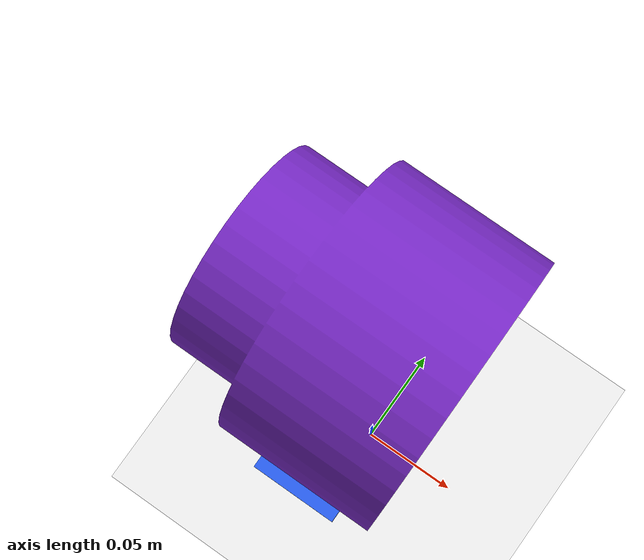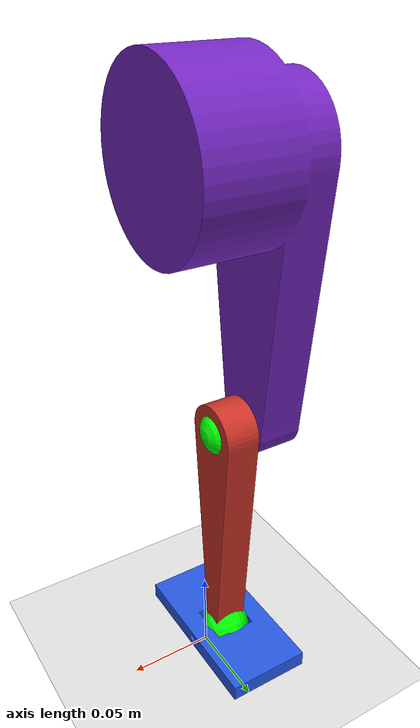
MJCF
<mujoco model="thigh_calf_foot_hinge">
    <compiler angle="degree" autolimits="true"/>
    <option gravity="0 0 -10" timestep="0.002"/>

    <asset>
        <!-- SolidWorks 导出的 STL 使用 mm，这里统一缩放到 MuJoCo 的 m -->
        <mesh name="thigh_mesh" file="thigh.STL" scale="0.001 0.001 0.001"/>
        <mesh name="calf_mesh" file="calf.STL" scale="0.001 0.001 0.001"/>
        <mesh name="foot_mesh" file="foot.STL" scale="0.001 0.001 0.001"/>
    </asset>

    <worldbody>
        <light diffuse=".5 .5 .5" pos="0 0 3" dir="0 0 -1"/>
        <geom type="plane" size="5 5 0.1" rgba=".9 .9 .9 1"/>

        <!--
            thigh/calf 的 STL 长轴是 SolidWorks 的 X 轴。
            这里把 thigh 局部 +X 方向转到竖直向下：
              thigh origin -> knee_hinge: 150mm
              knee_hinge   -> ankle_hinge: 150mm
        -->
        <body name="thigh" pos="0 0 0.305" euler="0 90 0">
            <freejoint/>
            <geom name="thigh_geom" type="mesh" mesh="thigh_mesh" rgba="0.45 0.15 0.75 1" mass="1"/>

            <!--
                calf body 原点放在 thigh 局部坐标 x=150mm 处。
                knee_hinge 的 pos="0 0 0" 表示关节轴经过 calf body 原点；
                当前 calf mesh 未设置 pos，因此 calf.STL 的原始 (0,0,0) 对齐在膝关节。
            -->
            <body name="calf" pos="0.15 0 -0.015">
                <joint name="knee_hinge" type="hinge" pos="0 0 0" axis="0 0 1" damping="0.05"/>
                <geom name="calf_geom" type="mesh" mesh="calf_mesh" rgba="0.8 0.2 0.15 1" mass="1"/>
                <site name="knee_origin" pos="0 0 0" type="sphere" size="0.015" rgba="0 1 0 1"/>

                <body name="foot" pos="0.15 0 0" euler="0 0 90">
                    <joint name="ankle_hinge" type="hinge" pos="0 0 0" axis="0 0 1" damping="0.05"/>
                    <geom name="foot_geom" type="mesh" mesh="foot_mesh" rgba="0.15 0.35 0.9 1" mass="0.5"/>
                    <site name="ankle_origin" pos="0 0 0" type="sphere" size="0.015" rgba="0 1 0 1"/>
                </body>
            </body>
        </body>
    </worldbody>
</mujoco>
